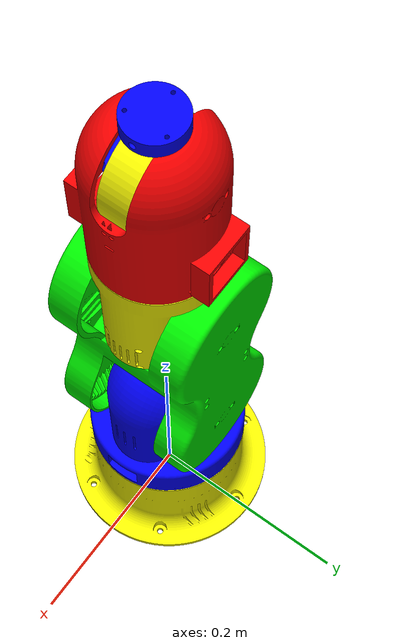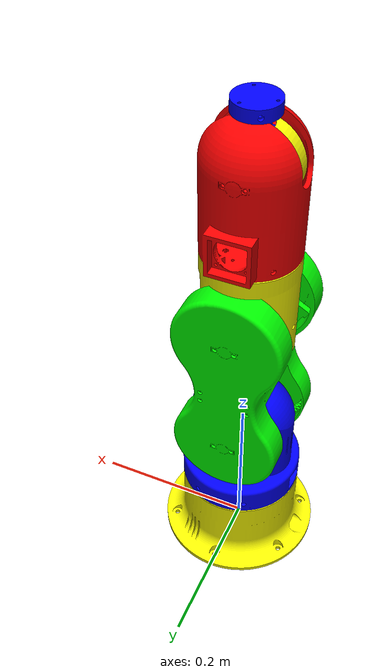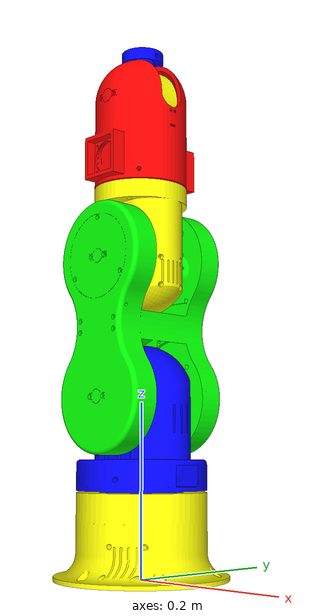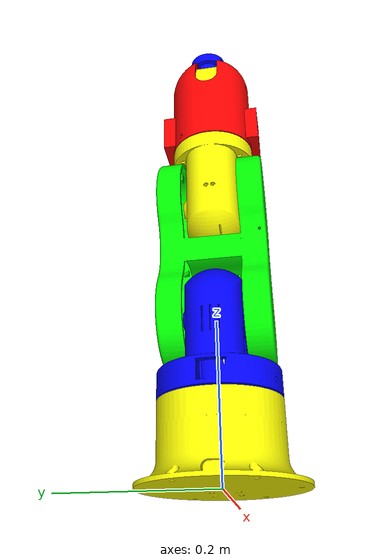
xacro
<?xml version="1.0"?>

<robot xmlns:xacro="http://ros.org/wiki/xacro" name="thor">
  <property name="M_PI" value="3.1415926535897931" />
  <link name="thor_base_link">
    <visual>
      <geometry>
        <mesh filename="package://thor_description/meshes/thor_base_link.stl"/>
      </geometry>
      <origin xyz="0 0 0" rpy="0 0 0"/>
      <material name="yellow">
        <color rgba="1 1 0 1"/>
      </material>
    </visual>
  </link>

  <link name="thor_art1_link">
    <visual>
      <geometry>
        <mesh filename="package://thor_description/meshes/thor_art1_link.stl"/>
      </geometry>
      <origin xyz="0 0 0" rpy="0 0 0"/>
      <material name="blue">
        <color rgba="0 0 1 1"/>
      </material>
    </visual>
  </link>
  <link name="thor_art2_link">
    <visual>
      <geometry>
        <mesh filename="package://thor_description/meshes/thor_art2_link.stl"/>
      </geometry>
      <origin xyz="0 .055 0" rpy="0 0 0"/>
      <material name="green">
        <color rgba="0 1 0 1"/>
      </material>
    </visual>
  </link>

  <link name="thor_art3_link" >
    <visual>
    	<geometry>
      	  <mesh filename="package://thor_description/meshes/thor_art3_link.stl"/>
	</geometry>
      	<origin xyz="0 -.0375 0" rpy="0 0 0"/>
      	<material name="yellow">
        <color rgba="1 1 0 1"/>
        </material>
    </visual>
  </link>

  <link name="thor_art4_link">
    <visual>
      <geometry>
	<mesh filename="package://thor_description/meshes/thor_art4_link.stl"/>
      </geometry>
      <origin xyz="0 -.0025 0" rpy="0 0 0"/>
      <material name="red">
        <color rgba="1 0 0 1"/>
      </material>
    </visual>
  </link>

  <link name="thor_art5_link">
    <visual>
      <geometry>
	<mesh filename="package://thor_description/meshes/thor_art5_link.stl"/>
      </geometry>
      <origin xyz="0 0 0" rpy="0 0 0"/>
      <material name="yellow">
        <color rgba="1 1 0 1"/>
      </material>
    </visual>
  </link>

  <link name="thor_art6_link">
    <visual>
      <geometry>
        <mesh filename="package://thor_description/meshes/thor_art6_link.stl"/>
      </geometry>
      <origin xyz="0 0 0" rpy="0 0 0"/>
      <material name="blue">
        <color rgba="0 0 1 1"/>
      </material>
    </visual>
  </link>

  <joint name="thor_art1_joint" type="revolute">
    <parent link="thor_base_link"/>
    <child link="thor_art1_link"/>
    <origin xyz="0 0 .105" rpy="0 0 0" />
    <axis xyz="0 0 1" />
    <limit effort="1.0" lower="-${M_PI}" upper="${M_PI}" velocity="0.5"/>
  </joint>

  <joint name="thor_art2_joint" type="revolute">
    <parent link="thor_art1_link"/>
    <child link="thor_art2_link"/>
    <origin xyz="0 0 .100" rpy="0 0 0" />
    <axis xyz="0 1 0" />
    <limit effort="1.0" lower="-${M_PI/2}" upper="${M_PI/2}" velocity="0.5"/>
  </joint>

  <joint name="thor_art3_joint" type="revolute">
    <parent link="thor_art2_link"/>
    <child link="thor_art3_link"/>
    <origin xyz="0 0 .160" rpy="0 0 0" />
    <axis xyz="0 1 0" />
    <limit effort="1.0" lower="-${M_PI}" upper="${M_PI}" velocity="0.5"/>
  </joint>

  <joint name="thor_art4_joint" type="revolute">
    <parent link="thor_art3_link"/>
    <child link="thor_art4_link"/>
    <origin xyz="0 0 .090" rpy="0 0 0" />
    <axis xyz="0 0 1" />
    <limit effort="1.0" lower="-${M_PI}" upper="${M_PI}" velocity="0.5"/>
  </joint>

  <joint name="thor_art5_joint" type="revolute">
    <parent link="thor_art4_link"/>
    <child link="thor_art5_link"/>
    <origin xyz="0 0 0.100" rpy="0 0 0" />
    <axis xyz="0 1 0" />
    <limit effort="1.0" lower="-${M_PI/2}" upper="${M_PI/2}" velocity="0.5"/>
  </joint>

  <joint name="thor_art6_joint" type="revolute">
    <parent link="thor_art5_link"/>
    <child link="thor_art6_link"/>
    <origin xyz="0 0 .070" rpy="0 0 0" />
    <axis xyz="0 0 1" />
    <limit effort="1000.0" lower="-${M_PI}" upper="${M_PI}" velocity="0.5"/>
  </joint>

</robot>
